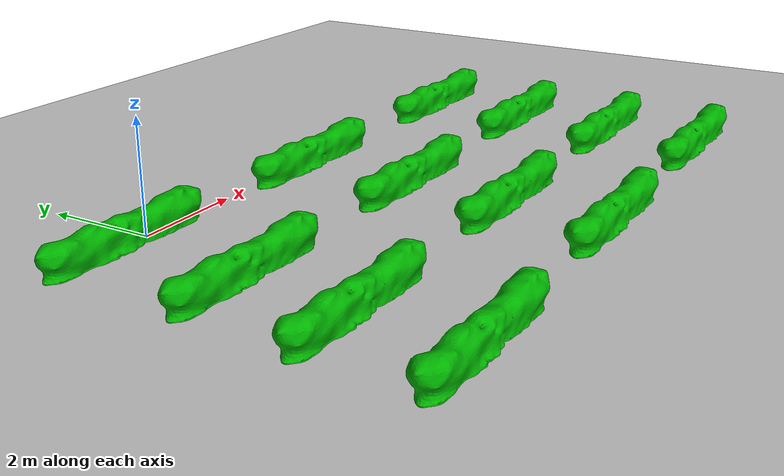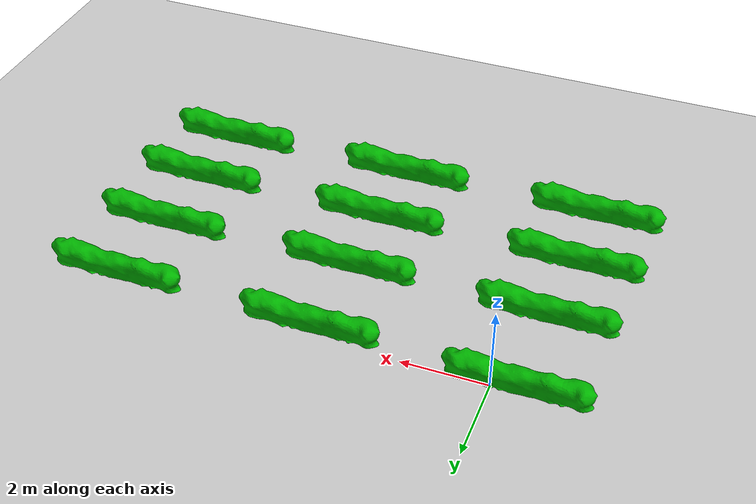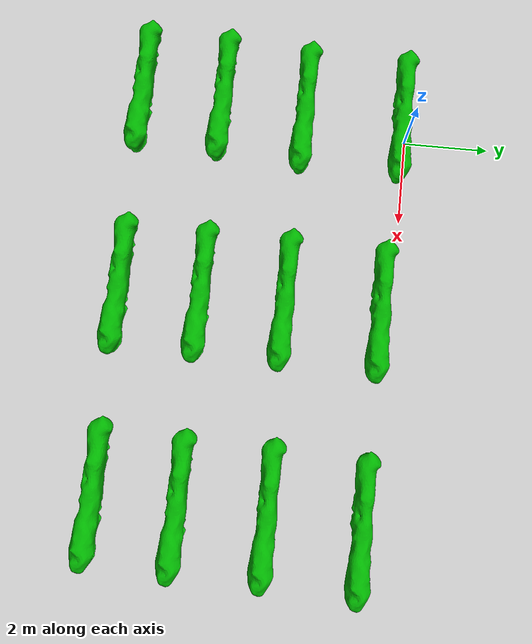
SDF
<sdf version="1.6">
 <world name="default">
  <light name="sun" type="directional">
   <pose>0 0 10 0 -0 0</pose>
   <diffuse>0.8 0.8 0.8 1</diffuse>
   <specular>0.2 0.2 0.2 1</specular>
   <attenuation>
    <range>1000</range>
    <constant>0.9</constant>
    <linear>0.01</linear>
    <quadratic>0.001</quadratic>
   </attenuation>
   <direction>-0.5 0.1 -0.9</direction>
  </light>
  <model name="earth_plane">
   <static>1</static>
   <link name="link">
    <collision name="collision">
     <geometry><plane><normal>0 0 1</normal><size>100 100</size></plane></geometry>
     <surface><friction><ode><mu>100</mu><mu2>50</mu2></ode></friction></surface>
    </collision>
    <visual name="visual">
     <cast_shadows>0</cast_shadows>
     <geometry><plane><normal>0 0 1</normal><size>100 100</size></plane></geometry>
     <material>
      <script>
       <uri>model://earth_plane/materials/scripts</uri>
       <uri>model://earth_plane/materials/textures</uri>
       <name>vrc/earth</name>
      </script>
     </material>
    </visual>
    <velocity_decay><linear>0</linear><angular>0</angular></velocity_decay>
   </link>
  </model>
  <physics name="default_physics" default="0" type="ode">
   <max_step_size>0.001</max_step_size>
   <real_time_factor>1</real_time_factor>
   <real_time_update_rate>1000</real_time_update_rate>
  </physics>
  <scene>
   <ambient>0.4 0.4 0.4 1</ambient>
   <background>0.7 0.7 0.7 1</background>
   <shadows>1</shadows>
   <sky><clouds><speed>12</speed></clouds></sky>
  </scene>
  <spherical_coordinates>
   <surface_model>EARTH_WGS84</surface_model>
   <latitude_deg>0</latitude_deg>
   <longitude_deg>0</longitude_deg>
   <elevation>0</elevation>
   <heading_deg>0</heading_deg>
  </spherical_coordinates>
  <gravity>0 0 -9.8</gravity>
  <magnetic_field>6e-06 2.3e-05 -4.2e-05</magnetic_field>
  <atmosphere type="adiabatic"/>
  <audio><device>default</device></audio>
  <model name="plot">
   <link name="link_6">
    <inertial>
     <mass>1</mass>
     <inertia>
      <ixx>0.166667</ixx>
      <ixy>0</ixy>
      <ixz>0</ixz>
      <iyy>0.166667</iyy>
      <iyz>0</iyz>
      <izz>0.166667</izz>
     </inertia>
    </inertial>
    <visual name="visual">
     <pose>0 0 0.35211 0 -0 0</pose>
     <geometry><mesh><uri>model://plot/meshes/plot.stl</uri><scale>1 1 1</scale></mesh></geometry>
     <material>
      <lighting>1</lighting>
      <script><uri>file://media/materials/scripts/gazebo.material</uri><name>Gazebo/Grey</name></script>
      <shader type="pixel"><normal_map>__default__</normal_map></shader>
      <ambient>0.2 0.9 0.1 1</ambient>
      <diffuse>0 0.7 0 1</diffuse>
      <specular>0.01 0.01 0.01 1</specular>
      <emissive>0 0 0 1</emissive>
     </material>
    </visual>
    <collision name="collision">
     <pose>0 0 0.306336 0 -0 0</pose>
     <geometry><mesh><uri>model://plot/meshes/plot.stl</uri><scale>1 1 1</scale></mesh></geometry>
     <surface>
      <friction>
       <ode><mu>1</mu><mu2>1</mu2><fdir1>0 0 0</fdir1><slip1>0</slip1><slip2>0</slip2></ode>
       <torsional>
        <coefficient>1</coefficient>
        <patch_radius>0</patch_radius>
        <surface_radius>0</surface_radius>
        <use_patch_radius>1</use_patch_radius>
        <ode><slip>0</slip></ode>
       </torsional>
      </friction>
      <bounce><restitution_coefficient>0</restitution_coefficient><threshold>1e+06</threshold></bounce>
      <contact>
       <collide_without_contact>0</collide_without_contact>
       <collide_without_contact_bitmask>1</collide_without_contact_bitmask>
       <collide_bitmask>1</collide_bitmask>
       <ode>
        <soft_cfm>0</soft_cfm>
        <soft_erp>0.2</soft_erp>
        <kp>1e+13</kp>
        <kd>1</kd>
        <max_vel>0.01</max_vel>
        <min_depth>0</min_depth>
       </ode>
       <bullet>
        <split_impulse>1</split_impulse>
        <split_impulse_penetration_threshold>-0.01</split_impulse_penetration_threshold>
        <soft_cfm>0</soft_cfm>
        <soft_erp>0.2</soft_erp>
        <kp>1e+13</kp>
        <kd>1</kd>
       </bullet>
      </contact>
     </surface>
    </collision>
   </link>
   <static>1</static>
   <pose>-0.702663 -4.46163 0 0 -0 0</pose>
  </model>
  <model name="plot_0">
   <link name="link_6">
    <inertial>
     <mass>1</mass>
     <inertia>
      <ixx>0.166667</ixx>
      <ixy>0</ixy>
      <ixz>0</ixz>
      <iyy>0.166667</iyy>
      <iyz>0</iyz>
      <izz>0.166667</izz>
     </inertia>
    </inertial>
    <visual name="visual">
     <pose>0 0 0.35211 0 -0 0</pose>
     <geometry><mesh><uri>model://plot/meshes/plot.stl</uri><scale>1 1 1</scale></mesh></geometry>
     <material>
      <lighting>1</lighting>
      <script><uri>file://media/materials/scripts/gazebo.material</uri><name>Gazebo/Grey</name></script>
      <shader type="pixel"><normal_map>__default__</normal_map></shader>
      <ambient>0.2 0.9 0.1 1</ambient>
      <diffuse>0 0.7 0 1</diffuse>
      <specular>0.01 0.01 0.01 1</specular>
      <emissive>0 0 0 1</emissive>
     </material>
    </visual>
    <collision name="collision">
     <pose>0 0 0.306336 0 -0 0</pose>
     <geometry><mesh><uri>model://plot/meshes/plot.stl</uri><scale>1 1 1</scale></mesh></geometry>
     <surface>
      <friction>
       <ode><mu>1</mu><mu2>1</mu2><fdir1>0 0 0</fdir1><slip1>0</slip1><slip2>0</slip2></ode>
       <torsional>
        <coefficient>1</coefficient>
        <patch_radius>0</patch_radius>
        <surface_radius>0</surface_radius>
        <use_patch_radius>1</use_patch_radius>
        <ode><slip>0</slip></ode>
       </torsional>
      </friction>
      <bounce><restitution_coefficient>0</restitution_coefficient><threshold>1e+06</threshold></bounce>
      <contact>
       <collide_without_contact>0</collide_without_contact>
       <collide_without_contact_bitmask>1</collide_without_contact_bitmask>
       <collide_bitmask>1</collide_bitmask>
       <ode>
        <soft_cfm>0</soft_cfm>
        <soft_erp>0.2</soft_erp>
        <kp>1e+13</kp>
        <kd>1</kd>
        <max_vel>0.01</max_vel>
        <min_depth>0</min_depth>
       </ode>
       <bullet>
        <split_impulse>1</split_impulse>
        <split_impulse_penetration_threshold>-0.01</split_impulse_penetration_threshold>
        <soft_cfm>0</soft_cfm>
        <soft_erp>0.2</soft_erp>
        <kp>1e+13</kp>
        <kd>1</kd>
       </bullet>
      </contact>
     </surface>
    </collision>
   </link>
   <static>1</static>
   <pose>-0.739791 -6.4081 0 0 -0 0</pose>
  </model>
  <model name="plot_1">
   <link name="link_6">
    <inertial>
     <mass>1</mass>
     <inertia>
      <ixx>0.166667</ixx>
      <ixy>0</ixy>
      <ixz>0</ixz>
      <iyy>0.166667</iyy>
      <iyz>0</iyz>
      <izz>0.166667</izz>
     </inertia>
    </inertial>
    <visual name="visual">
     <pose>0 0 0.35211 0 -0 0</pose>
     <geometry><mesh><uri>model://plot/meshes/plot.stl</uri><scale>1 1 1</scale></mesh></geometry>
     <material>
      <lighting>1</lighting>
      <script><uri>file://media/materials/scripts/gazebo.material</uri><name>Gazebo/Grey</name></script>
      <shader type="pixel"><normal_map>__default__</normal_map></shader>
      <ambient>0.2 0.9 0.1 1</ambient>
      <diffuse>0 0.7 0 1</diffuse>
      <specular>0.01 0.01 0.01 1</specular>
      <emissive>0 0 0 1</emissive>
     </material>
    </visual>
    <collision name="collision">
     <pose>0 0 0.306336 0 -0 0</pose>
     <geometry><mesh><uri>model://plot/meshes/plot.stl</uri><scale>1 1 1</scale></mesh></geometry>
     <surface>
      <friction>
       <ode><mu>1</mu><mu2>1</mu2><fdir1>0 0 0</fdir1><slip1>0</slip1><slip2>0</slip2></ode>
       <torsional>
        <coefficient>1</coefficient>
        <patch_radius>0</patch_radius>
        <surface_radius>0</surface_radius>
        <use_patch_radius>1</use_patch_radius>
        <ode><slip>0</slip></ode>
       </torsional>
      </friction>
      <bounce><restitution_coefficient>0</restitution_coefficient><threshold>1e+06</threshold></bounce>
      <contact>
       <collide_without_contact>0</collide_without_contact>
       <collide_without_contact_bitmask>1</collide_without_contact_bitmask>
       <collide_bitmask>1</collide_bitmask>
       <ode>
        <soft_cfm>0</soft_cfm>
        <soft_erp>0.2</soft_erp>
        <kp>1e+13</kp>
        <kd>1</kd>
        <max_vel>0.01</max_vel>
        <min_depth>0</min_depth>
       </ode>
       <bullet>
        <split_impulse>1</split_impulse>
        <split_impulse_penetration_threshold>-0.01</split_impulse_penetration_threshold>
        <soft_cfm>0</soft_cfm>
        <soft_erp>0.2</soft_erp>
        <kp>1e+13</kp>
        <kd>1</kd>
       </bullet>
      </contact>
     </surface>
    </collision>
   </link>
   <static>1</static>
   <pose>-0.567819 -2.45948 0 0 -0 0</pose>
  </model>
  <model name="plot_2">
   <link name="link_6">
    <inertial>
     <mass>1</mass>
     <inertia>
      <ixx>0.166667</ixx>
      <ixy>0</ixy>
      <ixz>0</ixz>
      <iyy>0.166667</iyy>
      <iyz>0</iyz>
      <izz>0.166667</izz>
     </inertia>
    </inertial>
    <visual name="visual">
     <pose>0 0 0.35211 0 -0 0</pose>
     <geometry><mesh><uri>model://plot/meshes/plot.stl</uri><scale>1 1 1</scale></mesh></geometry>
     <material>
      <lighting>1</lighting>
      <script><uri>file://media/materials/scripts/gazebo.material</uri><name>Gazebo/Grey</name></script>
      <shader type="pixel"><normal_map>__default__</normal_map></shader>
      <ambient>0.2 0.9 0.1 1</ambient>
      <diffuse>0 0.7 0 1</diffuse>
      <specular>0.01 0.01 0.01 1</specular>
      <emissive>0 0 0 1</emissive>
     </material>
    </visual>
    <collision name="collision">
     <pose>0 0 0.306336 0 -0 0</pose>
     <geometry><mesh><uri>model://plot/meshes/plot.stl</uri><scale>1 1 1</scale></mesh></geometry>
     <surface>
      <friction>
       <ode><mu>1</mu><mu2>1</mu2><fdir1>0 0 0</fdir1><slip1>0</slip1><slip2>0</slip2></ode>
       <torsional>
        <coefficient>1</coefficient>
        <patch_radius>0</patch_radius>
        <surface_radius>0</surface_radius>
        <use_patch_radius>1</use_patch_radius>
        <ode><slip>0</slip></ode>
       </torsional>
      </friction>
      <bounce><restitution_coefficient>0</restitution_coefficient><threshold>1e+06</threshold></bounce>
      <contact>
       <collide_without_contact>0</collide_without_contact>
       <collide_without_contact_bitmask>1</collide_without_contact_bitmask>
       <collide_bitmask>1</collide_bitmask>
       <ode>
        <soft_cfm>0</soft_cfm>
        <soft_erp>0.2</soft_erp>
        <kp>1e+13</kp>
        <kd>1</kd>
        <max_vel>0.01</max_vel>
        <min_depth>0</min_depth>
       </ode>
       <bullet>
        <split_impulse>1</split_impulse>
        <split_impulse_penetration_threshold>-0.01</split_impulse_penetration_threshold>
        <soft_cfm>0</soft_cfm>
        <soft_erp>0.2</soft_erp>
        <kp>1e+13</kp>
        <kd>1</kd>
       </bullet>
      </contact>
     </surface>
    </collision>
   </link>
   <static>1</static>
   <pose>4.14498 -2.48936 0 0 -0 0</pose>
  </model>
  <model name="plot_3">
   <link name="link_6">
    <inertial>
     <mass>1</mass>
     <inertia>
      <ixx>0.166667</ixx>
      <ixy>0</ixy>
      <ixz>0</ixz>
      <iyy>0.166667</iyy>
      <iyz>0</iyz>
      <izz>0.166667</izz>
     </inertia>
    </inertial>
    <visual name="visual">
     <pose>0 0 0.35211 0 -0 0</pose>
     <geometry><mesh><uri>model://plot/meshes/plot.stl</uri><scale>1 1 1</scale></mesh></geometry>
     <material>
      <lighting>1</lighting>
      <script><uri>file://media/materials/scripts/gazebo.material</uri><name>Gazebo/Grey</name></script>
      <shader type="pixel"><normal_map>__default__</normal_map></shader>
      <ambient>0.2 0.9 0.1 1</ambient>
      <diffuse>0 0.7 0 1</diffuse>
      <specular>0.01 0.01 0.01 1</specular>
      <emissive>0 0 0 1</emissive>
     </material>
    </visual>
    <collision name="collision">
     <pose>0 0 0.306336 0 -0 0</pose>
     <geometry><mesh><uri>model://plot/meshes/plot.stl</uri><scale>1 1 1</scale></mesh></geometry>
     <surface>
      <friction>
       <ode><mu>1</mu><mu2>1</mu2><fdir1>0 0 0</fdir1><slip1>0</slip1><slip2>0</slip2></ode>
       <torsional>
        <coefficient>1</coefficient>
        <patch_radius>0</patch_radius>
        <surface_radius>0</surface_radius>
        <use_patch_radius>1</use_patch_radius>
        <ode><slip>0</slip></ode>
       </torsional>
      </friction>
      <bounce><restitution_coefficient>0</restitution_coefficient><threshold>1e+06</threshold></bounce>
      <contact>
       <collide_without_contact>0</collide_without_contact>
       <collide_without_contact_bitmask>1</collide_without_contact_bitmask>
       <collide_bitmask>1</collide_bitmask>
       <ode>
        <soft_cfm>0</soft_cfm>
        <soft_erp>0.2</soft_erp>
        <kp>1e+13</kp>
        <kd>1</kd>
        <max_vel>0.01</max_vel>
        <min_depth>0</min_depth>
       </ode>
       <bullet>
        <split_impulse>1</split_impulse>
        <split_impulse_penetration_threshold>-0.01</split_impulse_penetration_threshold>
        <soft_cfm>0</soft_cfm>
        <soft_erp>0.2</soft_erp>
        <kp>1e+13</kp>
        <kd>1</kd>
       </bullet>
      </contact>
     </surface>
    </collision>
   </link>
   <static>1</static>
   <pose>4.12976 -4.43665 0 0 -0 0</pose>
  </model>
  <model name="plot_4">
   <link name="link_6">
    <inertial>
     <mass>1</mass>
     <inertia>
      <ixx>0.166667</ixx>
      <ixy>0</ixy>
      <ixz>0</ixz>
      <iyy>0.166667</iyy>
      <iyz>0</iyz>
      <izz>0.166667</izz>
     </inertia>
    </inertial>
    <visual name="visual">
     <pose>0 0 0.35211 0 -0 0</pose>
     <geometry><mesh><uri>model://plot/meshes/plot.stl</uri><scale>1 1 1</scale></mesh></geometry>
     <material>
      <lighting>1</lighting>
      <script><uri>file://media/materials/scripts/gazebo.material</uri><name>Gazebo/Grey</name></script>
      <shader type="pixel"><normal_map>__default__</normal_map></shader>
      <ambient>0.2 0.9 0.1 1</ambient>
      <diffuse>0 0.7 0 1</diffuse>
      <specular>0.01 0.01 0.01 1</specular>
      <emissive>0 0 0 1</emissive>
     </material>
    </visual>
    <collision name="collision">
     <pose>0 0 0.306336 0 -0 0</pose>
     <geometry><mesh><uri>model://plot/meshes/plot.stl</uri><scale>1 1 1</scale></mesh></geometry>
     <surface>
      <friction>
       <ode><mu>1</mu><mu2>1</mu2><fdir1>0 0 0</fdir1><slip1>0</slip1><slip2>0</slip2></ode>
       <torsional>
        <coefficient>1</coefficient>
        <patch_radius>0</patch_radius>
        <surface_radius>0</surface_radius>
        <use_patch_radius>1</use_patch_radius>
        <ode><slip>0</slip></ode>
       </torsional>
      </friction>
      <bounce><restitution_coefficient>0</restitution_coefficient><threshold>1e+06</threshold></bounce>
      <contact>
       <collide_without_contact>0</collide_without_contact>
       <collide_without_contact_bitmask>1</collide_without_contact_bitmask>
       <collide_bitmask>1</collide_bitmask>
       <ode>
        <soft_cfm>0</soft_cfm>
        <soft_erp>0.2</soft_erp>
        <kp>1e+13</kp>
        <kd>1</kd>
        <max_vel>0.01</max_vel>
        <min_depth>0</min_depth>
       </ode>
       <bullet>
        <split_impulse>1</split_impulse>
        <split_impulse_penetration_threshold>-0.01</split_impulse_penetration_threshold>
        <soft_cfm>0</soft_cfm>
        <soft_erp>0.2</soft_erp>
        <kp>1e+13</kp>
        <kd>1</kd>
       </bullet>
      </contact>
     </surface>
    </collision>
   </link>
   <static>1</static>
   <pose>4.11358 -6.33342 0 0 -0 0</pose>
  </model>
  <model name="plot_5">
   <link name="link_6">
    <inertial>
     <mass>1</mass>
     <inertia>
      <ixx>0.166667</ixx>
      <ixy>0</ixy>
      <ixz>0</ixz>
      <iyy>0.166667</iyy>
      <iyz>0</iyz>
      <izz>0.166667</izz>
     </inertia>
    </inertial>
    <visual name="visual">
     <pose>0 0 0.35211 0 -0 0</pose>
     <geometry><mesh><uri>model://plot/meshes/plot.stl</uri><scale>1 1 1</scale></mesh></geometry>
     <material>
      <lighting>1</lighting>
      <script><uri>file://media/materials/scripts/gazebo.material</uri><name>Gazebo/Grey</name></script>
      <shader type="pixel"><normal_map>__default__</normal_map></shader>
      <ambient>0.2 0.9 0.1 1</ambient>
      <diffuse>0 0.7 0 1</diffuse>
      <specular>0.01 0.01 0.01 1</specular>
      <emissive>0 0 0 1</emissive>
     </material>
    </visual>
    <collision name="collision">
     <pose>0 0 0.306336 0 -0 0</pose>
     <geometry><mesh><uri>model://plot/meshes/plot.stl</uri><scale>1 1 1</scale></mesh></geometry>
     <surface>
      <friction>
       <ode><mu>1</mu><mu2>1</mu2><fdir1>0 0 0</fdir1><slip1>0</slip1><slip2>0</slip2></ode>
       <torsional>
        <coefficient>1</coefficient>
        <patch_radius>0</patch_radius>
        <surface_radius>0</surface_radius>
        <use_patch_radius>1</use_patch_radius>
        <ode><slip>0</slip></ode>
       </torsional>
      </friction>
      <bounce><restitution_coefficient>0</restitution_coefficient><threshold>1e+06</threshold></bounce>
      <contact>
       <collide_without_contact>0</collide_without_contact>
       <collide_without_contact_bitmask>1</collide_without_contact_bitmask>
       <collide_bitmask>1</collide_bitmask>
       <ode>
        <soft_cfm>0</soft_cfm>
        <soft_erp>0.2</soft_erp>
        <kp>1e+13</kp>
        <kd>1</kd>
        <max_vel>0.01</max_vel>
        <min_depth>0</min_depth>
       </ode>
       <bullet>
        <split_impulse>1</split_impulse>
        <split_impulse_penetration_threshold>-0.01</split_impulse_penetration_threshold>
        <soft_cfm>0</soft_cfm>
        <soft_erp>0.2</soft_erp>
        <kp>1e+13</kp>
        <kd>1</kd>
       </bullet>
      </contact>
     </surface>
    </collision>
   </link>
   <static>1</static>
   <pose>8.8859 -2.40892 0 0 -0 0</pose>
  </model>
  <model name="plot_6">
   <link name="link_6">
    <inertial>
     <mass>1</mass>
     <inertia>
      <ixx>0.166667</ixx>
      <ixy>0</ixy>
      <ixz>0</ixz>
      <iyy>0.166667</iyy>
      <iyz>0</iyz>
      <izz>0.166667</izz>
     </inertia>
    </inertial>
    <visual name="visual">
     <pose>0 0 0.35211 0 -0 0</pose>
     <geometry><mesh><uri>model://plot/meshes/plot.stl</uri><scale>1 1 1</scale></mesh></geometry>
     <material>
      <lighting>1</lighting>
      <script><uri>file://media/materials/scripts/gazebo.material</uri><name>Gazebo/Grey</name></script>
      <shader type="pixel"><normal_map>__default__</normal_map></shader>
      <ambient>0.2 0.9 0.1 1</ambient>
      <diffuse>0 0.7 0 1</diffuse>
      <specular>0.01 0.01 0.01 1</specular>
      <emissive>0 0 0 1</emissive>
     </material>
    </visual>
    <collision name="collision">
     <pose>0 0 0.306336 0 -0 0</pose>
     <geometry><mesh><uri>model://plot/meshes/plot.stl</uri><scale>1 1 1</scale></mesh></geometry>
     <surface>
      <friction>
       <ode><mu>1</mu><mu2>1</mu2><fdir1>0 0 0</fdir1><slip1>0</slip1><slip2>0</slip2></ode>
       <torsional>
        <coefficient>1</coefficient>
        <patch_radius>0</patch_radius>
        <surface_radius>0</surface_radius>
        <use_patch_radius>1</use_patch_radius>
        <ode><slip>0</slip></ode>
       </torsional>
      </friction>
      <bounce><restitution_coefficient>0</restitution_coefficient><threshold>1e+06</threshold></bounce>
      <contact>
       <collide_without_contact>0</collide_without_contact>
       <collide_without_contact_bitmask>1</collide_without_contact_bitmask>
       <collide_bitmask>1</collide_bitmask>
       <ode>
        <soft_cfm>0</soft_cfm>
        <soft_erp>0.2</soft_erp>
        <kp>1e+13</kp>
        <kd>1</kd>
        <max_vel>0.01</max_vel>
        <min_depth>0</min_depth>
       </ode>
       <bullet>
        <split_impulse>1</split_impulse>
        <split_impulse_penetration_threshold>-0.01</split_impulse_penetration_threshold>
        <soft_cfm>0</soft_cfm>
        <soft_erp>0.2</soft_erp>
        <kp>1e+13</kp>
        <kd>1</kd>
       </bullet>
      </contact>
     </surface>
    </collision>
   </link>
   <static>1</static>
   <pose>8.87801 -4.38607 0 0 -0 0</pose>
  </model>
  <model name="plot_7">
   <link name="link_6">
    <inertial>
     <mass>1</mass>
     <inertia>
      <ixx>0.166667</ixx>
      <ixy>0</ixy>
      <ixz>0</ixz>
      <iyy>0.166667</iyy>
      <iyz>0</iyz>
      <izz>0.166667</izz>
     </inertia>
    </inertial>
    <visual name="visual">
     <pose>0 0 0.35211 0 -0 0</pose>
     <geometry><mesh><uri>model://plot/meshes/plot.stl</uri><scale>1 1 1</scale></mesh></geometry>
     <material>
      <lighting>1</lighting>
      <script><uri>file://media/materials/scripts/gazebo.material</uri><name>Gazebo/Grey</name></script>
      <shader type="pixel"><normal_map>__default__</normal_map></shader>
      <ambient>0.2 0.9 0.1 1</ambient>
      <diffuse>0 0.7 0 1</diffuse>
      <specular>0.01 0.01 0.01 1</specular>
      <emissive>0 0 0 1</emissive>
     </material>
    </visual>
    <collision name="collision">
     <pose>0 0 0.306336 0 -0 0</pose>
     <geometry><mesh><uri>model://plot/meshes/plot.stl</uri><scale>1 1 1</scale></mesh></geometry>
     <surface>
      <friction>
       <ode><mu>1</mu><mu2>1</mu2><fdir1>0 0 0</fdir1><slip1>0</slip1><slip2>0</slip2></ode>
       <torsional>
        <coefficient>1</coefficient>
        <patch_radius>0</patch_radius>
        <surface_radius>0</surface_radius>
        <use_patch_radius>1</use_patch_radius>
        <ode><slip>0</slip></ode>
       </torsional>
      </friction>
      <bounce><restitution_coefficient>0</restitution_coefficient><threshold>1e+06</threshold></bounce>
      <contact>
       <collide_without_contact>0</collide_without_contact>
       <collide_without_contact_bitmask>1</collide_without_contact_bitmask>
       <collide_bitmask>1</collide_bitmask>
       <ode>
        <soft_cfm>0</soft_cfm>
        <soft_erp>0.2</soft_erp>
        <kp>1e+13</kp>
        <kd>1</kd>
        <max_vel>0.01</max_vel>
        <min_depth>0</min_depth>
       </ode>
       <bullet>
        <split_impulse>1</split_impulse>
        <split_impulse_penetration_threshold>-0.01</split_impulse_penetration_threshold>
        <soft_cfm>0</soft_cfm>
        <soft_erp>0.2</soft_erp>
        <kp>1e+13</kp>
        <kd>1</kd>
       </bullet>
      </contact>
     </surface>
    </collision>
   </link>
   <static>1</static>
   <pose>8.79422 -6.2622 0 0 -0 0</pose>
  </model>
  <model name="plot_8">
   <link name="link_6">
    <inertial>
     <mass>1</mass>
     <inertia>
      <ixx>0.166667</ixx>
      <ixy>0</ixy>
      <ixz>0</ixz>
      <iyy>0.166667</iyy>
      <iyz>0</iyz>
      <izz>0.166667</izz>
     </inertia>
    </inertial>
    <visual name="visual">
     <pose>0 0 0.35211 0 -0 0</pose>
     <geometry><mesh><uri>model://plot/meshes/plot.stl</uri><scale>1 1 1</scale></mesh></geometry>
     <material>
      <lighting>1</lighting>
      <script><uri>file://media/materials/scripts/gazebo.material</uri><name>Gazebo/Grey</name></script>
      <shader type="pixel"><normal_map>__default__</normal_map></shader>
      <ambient>0.2 0.9 0.1 1</ambient>
      <diffuse>0 0.7 0 1</diffuse>
      <specular>0.01 0.01 0.01 1</specular>
      <emissive>0 0 0 1</emissive>
     </material>
    </visual>
    <collision name="collision">
     <pose>0 0 0.306336 0 -0 0</pose>
     <geometry><mesh><uri>model://plot/meshes/plot.stl</uri><scale>1 1 1</scale></mesh></geometry>
     <surface>
      <friction>
       <ode><mu>1</mu><mu2>1</mu2><fdir1>0 0 0</fdir1><slip1>0</slip1><slip2>0</slip2></ode>
       <torsional>
        <coefficient>1</coefficient>
        <patch_radius>0</patch_radius>
        <surface_radius>0</surface_radius>
        <use_patch_radius>1</use_patch_radius>
        <ode><slip>0</slip></ode>
       </torsional>
      </friction>
      <bounce><restitution_coefficient>0</restitution_coefficient><threshold>1e+06</threshold></bounce>
      <contact>
       <collide_without_contact>0</collide_without_contact>
       <collide_without_contact_bitmask>1</collide_without_contact_bitmask>
       <collide_bitmask>1</collide_bitmask>
       <ode>
        <soft_cfm>0</soft_cfm>
        <soft_erp>0.2</soft_erp>
        <kp>1e+13</kp>
        <kd>1</kd>
        <max_vel>0.01</max_vel>
        <min_depth>0</min_depth>
       </ode>
       <bullet>
        <split_impulse>1</split_impulse>
        <split_impulse_penetration_threshold>-0.01</split_impulse_penetration_threshold>
        <soft_cfm>0</soft_cfm>
        <soft_erp>0.2</soft_erp>
        <kp>1e+13</kp>
        <kd>1</kd>
       </bullet>
      </contact>
     </surface>
    </collision>
   </link>
   <static>1</static>
   <pose>8.99932 -0.328776 0 0 -0 0</pose>
  </model>
  <model name="plot_9">
   <link name="link_6">
    <inertial>
     <mass>1</mass>
     <inertia>
      <ixx>0.166667</ixx>
      <ixy>0</ixy>
      <ixz>0</ixz>
      <iyy>0.166667</iyy>
      <iyz>0</iyz>
      <izz>0.166667</izz>
     </inertia>
    </inertial>
    <visual name="visual">
     <pose>0 0 0.35211 0 -0 0</pose>
     <geometry><mesh><uri>model://plot/meshes/plot.stl</uri><scale>1 1 1</scale></mesh></geometry>
     <material>
      <lighting>1</lighting>
      <script><uri>file://media/materials/scripts/gazebo.material</uri><name>Gazebo/Grey</name></script>
      <shader type="pixel"><normal_map>__default__</normal_map></shader>
      <ambient>0.2 0.9 0.1 1</ambient>
      <diffuse>0 0.7 0 1</diffuse>
      <specular>0.01 0.01 0.01 1</specular>
      <emissive>0 0 0 1</emissive>
     </material>
    </visual>
    <collision name="collision">
     <pose>0 0 0.306336 0 -0 0</pose>
     <geometry><mesh><uri>model://plot/meshes/plot.stl</uri><scale>1 1 1</scale></mesh></geometry>
     <surface>
      <friction>
       <ode><mu>1</mu><mu2>1</mu2><fdir1>0 0 0</fdir1><slip1>0</slip1><slip2>0</slip2></ode>
       <torsional>
        <coefficient>1</coefficient>
        <patch_radius>0</patch_radius>
        <surface_radius>0</surface_radius>
        <use_patch_radius>1</use_patch_radius>
        <ode><slip>0</slip></ode>
       </torsional>
      </friction>
      <bounce><restitution_coefficient>0</restitution_coefficient><threshold>1e+06</threshold></bounce>
      <contact>
       <collide_without_contact>0</collide_without_contact>
       <collide_without_contact_bitmask>1</collide_without_contact_bitmask>
       <collide_bitmask>1</collide_bitmask>
       <ode>
        <soft_cfm>0</soft_cfm>
        <soft_erp>0.2</soft_erp>
        <kp>1e+13</kp>
        <kd>1</kd>
        <max_vel>0.01</max_vel>
        <min_depth>0</min_depth>
       </ode>
       <bullet>
        <split_impulse>1</split_impulse>
        <split_impulse_penetration_threshold>-0.01</split_impulse_penetration_threshold>
        <soft_cfm>0</soft_cfm>
        <soft_erp>0.2</soft_erp>
        <kp>1e+13</kp>
        <kd>1</kd>
       </bullet>
      </contact>
     </surface>
    </collision>
   </link>
   <static>1</static>
   <pose>4.19467 -0.277248 0 0 -0 0</pose>
  </model>
  <model name="plot_10">
   <link name="link_6">
    <inertial>
     <mass>1</mass>
     <inertia>
      <ixx>0.166667</ixx>
      <ixy>0</ixy>
      <ixz>0</ixz>
      <iyy>0.166667</iyy>
      <iyz>0</iyz>
      <izz>0.166667</izz>
     </inertia>
    </inertial>
    <visual name="visual">
     <pose>0 0 0.35211 0 -0 0</pose>
     <geometry><mesh><uri>model://plot/meshes/plot.stl</uri><scale>1 1 1</scale></mesh></geometry>
     <material>
      <lighting>1</lighting>
      <script><uri>file://media/materials/scripts/gazebo.material</uri><name>Gazebo/Grey</name></script>
      <shader type="pixel"><normal_map>__default__</normal_map></shader>
      <ambient>0.2 0.9 0.1 1</ambient>
      <diffuse>0 0.7 0 1</diffuse>
      <specular>0.01 0.01 0.01 1</specular>
      <emissive>0 0 0 1</emissive>
     </material>
    </visual>
    <collision name="collision">
     <pose>0 0 0.306336 0 -0 0</pose>
     <geometry><mesh><uri>model://plot/meshes/plot.stl</uri><scale>1 1 1</scale></mesh></geometry>
     <surface>
      <friction>
       <ode><mu>1</mu><mu2>1</mu2><fdir1>0 0 0</fdir1><slip1>0</slip1><slip2>0</slip2></ode>
       <torsional>
        <coefficient>1</coefficient>
        <patch_radius>0</patch_radius>
        <surface_radius>0</surface_radius>
        <use_patch_radius>1</use_patch_radius>
        <ode><slip>0</slip></ode>
       </torsional>
      </friction>
      <bounce><restitution_coefficient>0</restitution_coefficient><threshold>1e+06</threshold></bounce>
      <contact>
       <collide_without_contact>0</collide_without_contact>
       <collide_without_contact_bitmask>1</collide_without_contact_bitmask>
       <collide_bitmask>1</collide_bitmask>
       <ode>
        <soft_cfm>0</soft_cfm>
        <soft_erp>0.2</soft_erp>
        <kp>1e+13</kp>
        <kd>1</kd>
        <max_vel>0.01</max_vel>
        <min_depth>0</min_depth>
       </ode>
       <bullet>
        <split_impulse>1</split_impulse>
        <split_impulse_penetration_threshold>-0.01</split_impulse_penetration_threshold>
        <soft_cfm>0</soft_cfm>
        <soft_erp>0.2</soft_erp>
        <kp>1e+13</kp>
        <kd>1</kd>
       </bullet>
      </contact>
     </surface>
    </collision>
   </link>
   <static>1</static>
   <pose>-0.554227 -0.107717 0 0 -0 0</pose>
  </model>
 </world>
</sdf>
